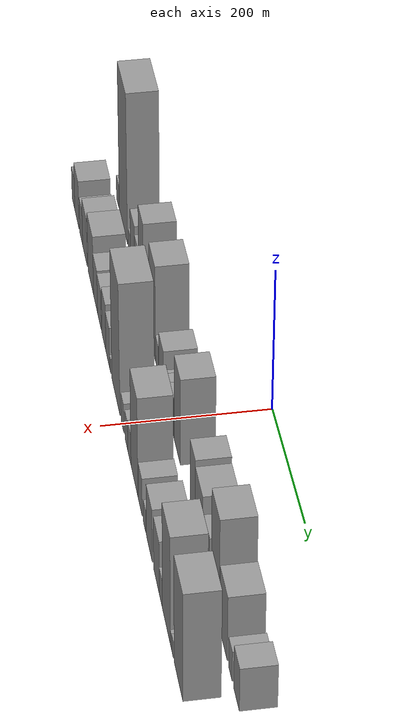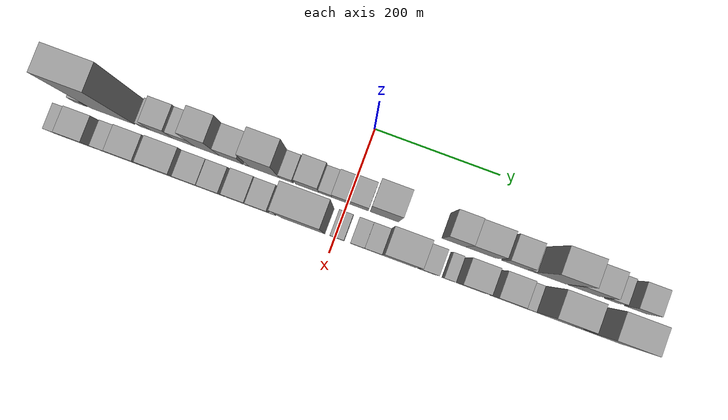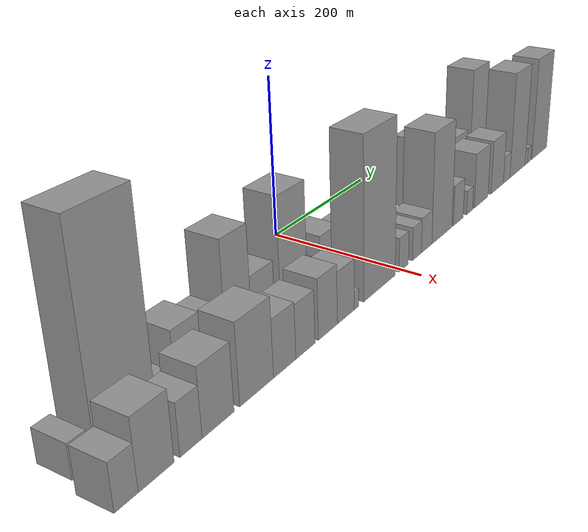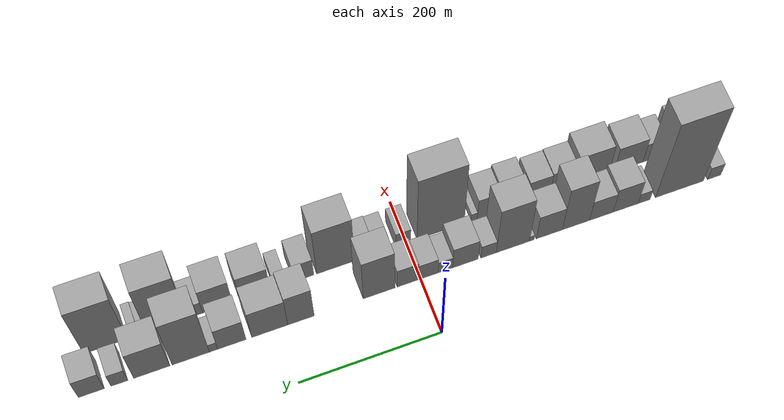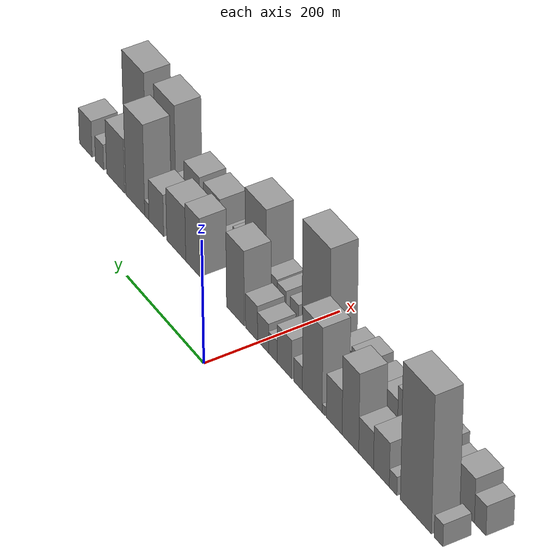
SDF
<sdf version="1.6">
 <world name="default">
  <scene>
   <sky><clouds><speed>12</speed></clouds></sky>
   <ambient>0.4 0.4 0.4 1</ambient>
   <background>0.7 0.7 0.7 1</background>
   <shadows>1</shadows>
  </scene>
  <gravity>0 0 -9.8066</gravity>
  <magnetic_field>6e-06 2.3e-05 -4.2e-05</magnetic_field>
  <physics default="0" name="default_physics" type="ode">
   <ode>
    <solver>
     <type>quick</type>
     <iters>10</iters>
     <sor>1.0</sor>
     <use_dynamic_moi_rescaling>0</use_dynamic_moi_rescaling>
    </solver>
    <constraints>
     <cfm>0</cfm>
     <erp>0.2</erp>
     <contact_max_correcting_vel>100</contact_max_correcting_vel>
     <contact_surface_layer>0.001</contact_surface_layer>
    </constraints>
   </ode>
   <max_step_size>0.004</max_step_size>
   <real_time_factor>1</real_time_factor>
   <real_time_update_rate>250</real_time_update_rate>
  </physics>
  <light name="sun" type="directional">
   <pose>0 0 10 0 0 0</pose>
   <diffuse>0.8 0.8 0.8 1</diffuse>
   <specular>0.2 0.2 0.2 1</specular>
   <attenuation>
    <range>1000</range>
    <constant>0.9</constant>
    <linear>0.01</linear>
    <quadratic>0.001</quadratic>
   </attenuation>
   <direction>-0.5 0.1 -0.9</direction>
  </light>
  <model name="building_1">
   <static>1</static>
   <pose>100.0000 -429.9319 0 0.000000 0.000000 0.000000</pose>
   <link name="link">
    <pose>0 0 18.00 0 0 0</pose>
    <collision name="collision"><geometry><box><size>40.0000 20.1361 36.0000</size></box></geometry></collision>
    <visual name="visual">
     <cast_shadows>0</cast_shadows>
     <geometry><box><size>40.0000 20.1361 36.0000</size></box></geometry>
     <material>
      <script>
       <uri>model://grey_wall/materials/scripts</uri>
       <uri>model://grey_wall/materials/textures</uri>
       <name>vrc/grey_wall</name>
      </script>
     </material>
    </visual>
   </link>
  </model>
  <model name="building_2">
   <static>1</static>
   <pose>100.0000 -378.0433 0 0.000000 0.000000 0.000000</pose>
   <link name="link">
    <pose>0 0 111.00 0 0 0</pose>
    <collision name="collision"><geometry><box><size>40.0000 71.6411 222.0000</size></box></geometry></collision>
    <visual name="visual">
     <cast_shadows>0</cast_shadows>
     <geometry><box><size>40.0000 71.6411 222.0000</size></box></geometry>
     <material>
      <script>
       <uri>model://grey_wall/materials/scripts</uri>
       <uri>model://grey_wall/materials/textures</uri>
       <name>vrc/grey_wall</name>
      </script>
     </material>
    </visual>
   </link>
  </model>
  <model name="building_3">
   <static>1</static>
   <pose>100.0000 -325.3569 0 0.000000 0.000000 0.000000</pose>
   <link name="link">
    <pose>0 0 15.00 0 0 0</pose>
    <collision name="collision"><geometry><box><size>40.0000 17.7317 30.0000</size></box></geometry></collision>
    <visual name="visual">
     <cast_shadows>0</cast_shadows>
     <geometry><box><size>40.0000 17.7317 30.0000</size></box></geometry>
     <material>
      <script>
       <uri>model://grey_wall/materials/scripts</uri>
       <uri>model://grey_wall/materials/textures</uri>
       <name>vrc/grey_wall</name>
      </script>
     </material>
    </visual>
   </link>
  </model>
  <model name="building_4">
   <static>1</static>
   <pose>100.0000 -297.9642 0 0.000000 0.000000 0.000000</pose>
   <link name="link">
    <pose>0 0 36.00 0 0 0</pose>
    <collision name="collision"><geometry><box><size>40.0000 37.0537 72.0000</size></box></geometry></collision>
    <visual name="visual">
     <cast_shadows>0</cast_shadows>
     <geometry><box><size>40.0000 37.0537 72.0000</size></box></geometry>
     <material>
      <script>
       <uri>model://grey_wall/materials/scripts</uri>
       <uri>model://grey_wall/materials/textures</uri>
       <name>vrc/grey_wall</name>
      </script>
     </material>
    </visual>
   </link>
  </model>
  <model name="building_5">
   <static>1</static>
   <pose>100.0000 -262.0159 0 0.000000 0.000000 0.000000</pose>
   <link name="link">
    <pose>0 0 30.00 0 0 0</pose>
    <collision name="collision"><geometry><box><size>40.0000 34.8430 60.0000</size></box></geometry></collision>
    <visual name="visual">
     <cast_shadows>0</cast_shadows>
     <geometry><box><size>40.0000 34.8430 60.0000</size></box></geometry>
     <material>
      <script>
       <uri>model://grey_wall/materials/scripts</uri>
       <uri>model://grey_wall/materials/textures</uri>
       <name>vrc/grey_wall</name>
      </script>
     </material>
    </visual>
   </link>
  </model>
  <model name="building_6">
   <static>1</static>
   <pose>100.0000 -224.6517 0 0.000000 0.000000 0.000000</pose>
   <link name="link">
    <pose>0 0 64.50 0 0 0</pose>
    <collision name="collision"><geometry><box><size>40.0000 39.8854 129.0000</size></box></geometry></collision>
    <visual name="visual">
     <cast_shadows>0</cast_shadows>
     <geometry><box><size>40.0000 39.8854 129.0000</size></box></geometry>
     <material>
      <script>
       <uri>model://grey_wall/materials/scripts</uri>
       <uri>model://grey_wall/materials/textures</uri>
       <name>vrc/grey_wall</name>
      </script>
     </material>
    </visual>
   </link>
  </model>
  <model name="building_7">
   <static>1</static>
   <pose>100.0000 -185.7584 0 0.000000 0.000000 0.000000</pose>
   <link name="link">
    <pose>0 0 36.00 0 0 0</pose>
    <collision name="collision"><geometry><box><size>40.0000 37.9011 72.0000</size></box></geometry></collision>
    <visual name="visual">
     <cast_shadows>0</cast_shadows>
     <geometry><box><size>40.0000 37.9011 72.0000</size></box></geometry>
     <material>
      <script>
       <uri>model://grey_wall/materials/scripts</uri>
       <uri>model://grey_wall/materials/textures</uri>
       <name>vrc/grey_wall</name>
      </script>
     </material>
    </visual>
   </link>
  </model>
  <model name="building_8">
   <static>1</static>
   <pose>100.0000 -160.2678 0 0.000000 0.000000 0.000000</pose>
   <link name="link">
    <pose>0 0 7.50 0 0 0</pose>
    <collision name="collision"><geometry><box><size>40.0000 7.0802 15.0000</size></box></geometry></collision>
    <visual name="visual">
     <cast_shadows>0</cast_shadows>
     <geometry><box><size>40.0000 7.0802 15.0000</size></box></geometry>
     <material>
      <script>
       <uri>model://grey_wall/materials/scripts</uri>
       <uri>model://grey_wall/materials/textures</uri>
       <name>vrc/grey_wall</name>
      </script>
     </material>
    </visual>
   </link>
  </model>
  <model name="building_9">
   <static>1</static>
   <pose>100.0000 -132.5861 0 0.000000 0.000000 0.000000</pose>
   <link name="link">
    <pose>0 0 69.00 0 0 0</pose>
    <collision name="collision"><geometry><box><size>40.0000 48.2832 138.0000</size></box></geometry></collision>
    <visual name="visual">
     <cast_shadows>0</cast_shadows>
     <geometry><box><size>40.0000 48.2832 138.0000</size></box></geometry>
     <material>
      <script>
       <uri>model://grey_wall/materials/scripts</uri>
       <uri>model://grey_wall/materials/textures</uri>
       <name>vrc/grey_wall</name>
      </script>
     </material>
    </visual>
   </link>
  </model>
  <model name="building_10">
   <static>1</static>
   <pose>100.0000 -97.4779 0 0.000000 0.000000 0.000000</pose>
   <link name="link">
    <pose>0 0 19.50 0 0 0</pose>
    <collision name="collision"><geometry><box><size>40.0000 21.9331 39.0000</size></box></geometry></collision>
    <visual name="visual">
     <cast_shadows>0</cast_shadows>
     <geometry><box><size>40.0000 21.9331 39.0000</size></box></geometry>
     <material>
      <script>
       <uri>model://grey_wall/materials/scripts</uri>
       <uri>model://grey_wall/materials/textures</uri>
       <name>vrc/grey_wall</name>
      </script>
     </material>
    </visual>
   </link>
  </model>
  <model name="building_11">
   <static>1</static>
   <pose>100.0000 -64.1464 0 0.000000 0.000000 0.000000</pose>
   <link name="link">
    <pose>0 0 31.50 0 0 0</pose>
    <collision name="collision"><geometry><box><size>40.0000 36.7299 63.0000</size></box></geometry></collision>
    <visual name="visual">
     <cast_shadows>0</cast_shadows>
     <geometry><box><size>40.0000 36.7299 63.0000</size></box></geometry>
     <material>
      <script>
       <uri>model://grey_wall/materials/scripts</uri>
       <uri>model://grey_wall/materials/textures</uri>
       <name>vrc/grey_wall</name>
      </script>
     </material>
    </visual>
   </link>
  </model>
  <model name="building_12">
   <static>1</static>
   <pose>100.0000 -35.3533 0 0.000000 0.000000 0.000000</pose>
   <link name="link">
    <pose>0 0 18.00 0 0 0</pose>
    <collision name="collision"><geometry><box><size>40.0000 20.8563 36.0000</size></box></geometry></collision>
    <visual name="visual">
     <cast_shadows>0</cast_shadows>
     <geometry><box><size>40.0000 20.8563 36.0000</size></box></geometry>
     <material>
      <script>
       <uri>model://grey_wall/materials/scripts</uri>
       <uri>model://grey_wall/materials/textures</uri>
       <name>vrc/grey_wall</name>
      </script>
     </material>
    </visual>
   </link>
  </model>
  <model name="building_13">
   <static>1</static>
   <pose>100.0000 -11.0019 0 0.000000 0.000000 0.000000</pose>
   <link name="link">
    <pose>0 0 24.00 0 0 0</pose>
    <collision name="collision"><geometry><box><size>40.0000 27.8465 48.0000</size></box></geometry></collision>
    <visual name="visual">
     <cast_shadows>0</cast_shadows>
     <geometry><box><size>40.0000 27.8465 48.0000</size></box></geometry>
     <material>
      <script>
       <uri>model://grey_wall/materials/scripts</uri>
       <uri>model://grey_wall/materials/textures</uri>
       <name>vrc/grey_wall</name>
      </script>
     </material>
    </visual>
   </link>
  </model>
  <model name="building_14">
   <static>1</static>
   <pose>100.0000 18.1159 0 0.000000 0.000000 0.000000</pose>
   <link name="link">
    <pose>0 0 28.50 0 0 0</pose>
    <collision name="collision"><geometry><box><size>40.0000 30.3891 57.0000</size></box></geometry></collision>
    <visual name="visual">
     <cast_shadows>0</cast_shadows>
     <geometry><box><size>40.0000 30.3891 57.0000</size></box></geometry>
     <material>
      <script>
       <uri>model://grey_wall/materials/scripts</uri>
       <uri>model://grey_wall/materials/textures</uri>
       <name>vrc/grey_wall</name>
      </script>
     </material>
    </visual>
   </link>
  </model>
  <model name="building_15">
   <static>1</static>
   <pose>100.0000 58.9269 0 0.000000 0.000000 0.000000</pose>
   <link name="link">
    <pose>0 0 61.50 0 0 0</pose>
    <collision name="collision"><geometry><box><size>40.0000 45.2328 123.0000</size></box></geometry></collision>
    <visual name="visual">
     <cast_shadows>0</cast_shadows>
     <geometry><box><size>40.0000 45.2328 123.0000</size></box></geometry>
     <material>
      <script>
       <uri>model://grey_wall/materials/scripts</uri>
       <uri>model://grey_wall/materials/textures</uri>
       <name>vrc/grey_wall</name>
      </script>
     </material>
    </visual>
   </link>
  </model>
  <model name="building_16">
   <static>1</static>
   <pose>100.0000 168.8333 0 0.000000 0.000000 0.000000</pose>
   <link name="link">
    <pose>0 0 48.00 0 0 0</pose>
    <collision name="collision"><geometry><box><size>40.0000 36.8600 96.0000</size></box></geometry></collision>
    <visual name="visual">
     <cast_shadows>0</cast_shadows>
     <geometry><box><size>40.0000 36.8600 96.0000</size></box></geometry>
     <material>
      <script>
       <uri>model://grey_wall/materials/scripts</uri>
       <uri>model://grey_wall/materials/textures</uri>
       <name>vrc/grey_wall</name>
      </script>
     </material>
    </visual>
   </link>
  </model>
  <model name="building_17">
   <static>1</static>
   <pose>100.0000 212.3292 0 0.000000 0.000000 0.000000</pose>
   <link name="link">
    <pose>0 0 43.50 0 0 0</pose>
    <collision name="collision"><geometry><box><size>40.0000 50.1318 87.0000</size></box></geometry></collision>
    <visual name="visual">
     <cast_shadows>0</cast_shadows>
     <geometry><box><size>40.0000 50.1318 87.0000</size></box></geometry>
     <material>
      <script>
       <uri>model://grey_wall/materials/scripts</uri>
       <uri>model://grey_wall/materials/textures</uri>
       <name>vrc/grey_wall</name>
      </script>
     </material>
    </visual>
   </link>
  </model>
  <model name="building_18">
   <static>1</static>
   <pose>100.0000 265.0279 0 0.000000 0.000000 0.000000</pose>
   <link name="link">
    <pose>0 0 34.50 0 0 0</pose>
    <collision name="collision"><geometry><box><size>40.0000 39.2657 69.0000</size></box></geometry></collision>
    <visual name="visual">
     <cast_shadows>0</cast_shadows>
     <geometry><box><size>40.0000 39.2657 69.0000</size></box></geometry>
     <material>
      <script>
       <uri>model://grey_wall/materials/scripts</uri>
       <uri>model://grey_wall/materials/textures</uri>
       <name>vrc/grey_wall</name>
      </script>
     </material>
    </visual>
   </link>
  </model>
  <model name="building_19">
   <static>1</static>
   <pose>100.0000 290.2849 0 0.000000 0.000000 0.000000</pose>
   <link name="link">
    <pose>0 0 13.50 0 0 0</pose>
    <collision name="collision"><geometry><box><size>40.0000 11.2484 27.0000</size></box></geometry></collision>
    <visual name="visual">
     <cast_shadows>0</cast_shadows>
     <geometry><box><size>40.0000 11.2484 27.0000</size></box></geometry>
     <material>
      <script>
       <uri>model://grey_wall/materials/scripts</uri>
       <uri>model://grey_wall/materials/textures</uri>
       <name>vrc/grey_wall</name>
      </script>
     </material>
    </visual>
   </link>
  </model>
  <model name="building_20">
   <static>1</static>
   <pose>100.0000 321.4841 0 0.000000 0.000000 0.000000</pose>
   <link name="link">
    <pose>0 0 75.00 0 0 0</pose>
    <collision name="collision"><geometry><box><size>40.0000 51.1499 150.0000</size></box></geometry></collision>
    <visual name="visual">
     <cast_shadows>0</cast_shadows>
     <geometry><box><size>40.0000 51.1499 150.0000</size></box></geometry>
     <material>
      <script>
       <uri>model://grey_wall/materials/scripts</uri>
       <uri>model://grey_wall/materials/textures</uri>
       <name>vrc/grey_wall</name>
      </script>
     </material>
    </visual>
   </link>
  </model>
  <model name="building_21">
   <static>1</static>
   <pose>100.0000 374.7330 0 0.000000 0.000000 0.000000</pose>
   <link name="link">
    <pose>0 0 45.00 0 0 0</pose>
    <collision name="collision"><geometry><box><size>40.0000 49.3478 90.0000</size></box></geometry></collision>
    <visual name="visual">
     <cast_shadows>0</cast_shadows>
     <geometry><box><size>40.0000 49.3478 90.0000</size></box></geometry>
     <material>
      <script>
       <uri>model://grey_wall/materials/scripts</uri>
       <uri>model://grey_wall/materials/textures</uri>
       <name>vrc/grey_wall</name>
      </script>
     </material>
    </visual>
   </link>
  </model>
  <model name="building_22">
   <static>1</static>
   <pose>100.0000 418.8094 0 0.000000 0.000000 0.000000</pose>
   <link name="link">
    <pose>0 0 21.00 0 0 0</pose>
    <collision name="collision"><geometry><box><size>40.0000 22.8051 42.0000</size></box></geometry></collision>
    <visual name="visual">
     <cast_shadows>0</cast_shadows>
     <geometry><box><size>40.0000 22.8051 42.0000</size></box></geometry>
     <material>
      <script>
       <uri>model://grey_wall/materials/scripts</uri>
       <uri>model://grey_wall/materials/textures</uri>
       <name>vrc/grey_wall</name>
      </script>
     </material>
    </visual>
   </link>
  </model>
  <model name="building_23">
   <static>1</static>
   <pose>100.0000 456.7064 0 0.000000 0.000000 0.000000</pose>
   <link name="link">
    <pose>0 0 30.00 0 0 0</pose>
    <collision name="collision"><geometry><box><size>40.0000 34.9889 60.0000</size></box></geometry></collision>
    <visual name="visual">
     <cast_shadows>0</cast_shadows>
     <geometry><box><size>40.0000 34.9889 60.0000</size></box></geometry>
     <material>
      <script>
       <uri>model://grey_wall/materials/scripts</uri>
       <uri>model://grey_wall/materials/textures</uri>
       <name>vrc/grey_wall</name>
      </script>
     </material>
    </visual>
   </link>
  </model>
  <model name="building_24">
   <static>1</static>
   <pose>155.0000 -436.9475 0 0.000000 0.000000 0.000000</pose>
   <link name="link">
    <pose>0 0 24.00 0 0 0</pose>
    <collision name="collision"><geometry><box><size>40.0000 26.1049 48.0000</size></box></geometry></collision>
    <visual name="visual">
     <cast_shadows>0</cast_shadows>
     <geometry><box><size>40.0000 26.1049 48.0000</size></box></geometry>
     <material>
      <script>
       <uri>model://grey_wall/materials/scripts</uri>
       <uri>model://grey_wall/materials/textures</uri>
       <name>vrc/grey_wall</name>
      </script>
     </material>
    </visual>
   </link>
  </model>
  <model name="building_25">
   <static>1</static>
   <pose>155.0000 -403.1090 0 0.000000 0.000000 0.000000</pose>
   <link name="link">
    <pose>0 0 36.00 0 0 0</pose>
    <collision name="collision"><geometry><box><size>40.0000 41.5721 72.0000</size></box></geometry></collision>
    <visual name="visual">
     <cast_shadows>0</cast_shadows>
     <geometry><box><size>40.0000 41.5721 72.0000</size></box></geometry>
     <material>
      <script>
       <uri>model://grey_wall/materials/scripts</uri>
       <uri>model://grey_wall/materials/textures</uri>
       <name>vrc/grey_wall</name>
      </script>
     </material>
    </visual>
   </link>
  </model>
  <model name="building_26">
   <static>1</static>
   <pose>155.0000 -361.3694 0 0.000000 0.000000 0.000000</pose>
   <link name="link">
    <pose>0 0 27.00 0 0 0</pose>
    <collision name="collision"><geometry><box><size>40.0000 27.9071 54.0000</size></box></geometry></collision>
    <visual name="visual">
     <cast_shadows>0</cast_shadows>
     <geometry><box><size>40.0000 27.9071 54.0000</size></box></geometry>
     <material>
      <script>
       <uri>model://grey_wall/materials/scripts</uri>
       <uri>model://grey_wall/materials/textures</uri>
       <name>vrc/grey_wall</name>
      </script>
     </material>
    </visual>
   </link>
  </model>
  <model name="building_27">
   <static>1</static>
   <pose>155.0000 -325.8531 0 0.000000 0.000000 0.000000</pose>
   <link name="link">
    <pose>0 0 36.00 0 0 0</pose>
    <collision name="collision"><geometry><box><size>40.0000 43.1255 72.0000</size></box></geometry></collision>
    <visual name="visual">
     <cast_shadows>0</cast_shadows>
     <geometry><box><size>40.0000 43.1255 72.0000</size></box></geometry>
     <material>
      <script>
       <uri>model://grey_wall/materials/scripts</uri>
       <uri>model://grey_wall/materials/textures</uri>
       <name>vrc/grey_wall</name>
      </script>
     </material>
    </visual>
   </link>
  </model>
  <model name="building_28">
   <static>1</static>
   <pose>155.0000 -271.0598 0 0.000000 0.000000 0.000000</pose>
   <link name="link">
    <pose>0 0 43.50 0 0 0</pose>
    <collision name="collision"><geometry><box><size>40.0000 50.4610 87.0000</size></box></geometry></collision>
    <visual name="visual">
     <cast_shadows>0</cast_shadows>
     <geometry><box><size>40.0000 50.4610 87.0000</size></box></geometry>
     <material>
      <script>
       <uri>model://grey_wall/materials/scripts</uri>
       <uri>model://grey_wall/materials/textures</uri>
       <name>vrc/grey_wall</name>
      </script>
     </material>
    </visual>
   </link>
  </model>
  <model name="building_29">
   <static>1</static>
   <pose>155.0000 -227.7071 0 0.000000 0.000000 0.000000</pose>
   <link name="link">
    <pose>0 0 31.50 0 0 0</pose>
    <collision name="collision"><geometry><box><size>40.0000 36.2444 63.0000</size></box></geometry></collision>
    <visual name="visual">
     <cast_shadows>0</cast_shadows>
     <geometry><box><size>40.0000 36.2444 63.0000</size></box></geometry>
     <material>
      <script>
       <uri>model://grey_wall/materials/scripts</uri>
       <uri>model://grey_wall/materials/textures</uri>
       <name>vrc/grey_wall</name>
      </script>
     </material>
    </visual>
   </link>
  </model>
  <model name="building_30">
   <static>1</static>
   <pose>155.0000 -193.0817 0 0.000000 0.000000 0.000000</pose>
   <link name="link">
    <pose>0 0 30.00 0 0 0</pose>
    <collision name="collision"><geometry><box><size>40.0000 33.0066 60.0000</size></box></geometry></collision>
    <visual name="visual">
     <cast_shadows>0</cast_shadows>
     <geometry><box><size>40.0000 33.0066 60.0000</size></box></geometry>
     <material>
      <script>
       <uri>model://grey_wall/materials/scripts</uri>
       <uri>model://grey_wall/materials/textures</uri>
       <name>vrc/grey_wall</name>
      </script>
     </material>
    </visual>
   </link>
  </model>
  <model name="building_31">
   <static>1</static>
   <pose>155.0000 -153.0790 0 0.000000 0.000000 0.000000</pose>
   <link name="link">
    <pose>0 0 34.50 0 0 0</pose>
    <collision name="collision"><geometry><box><size>40.0000 34.9989 69.0000</size></box></geometry></collision>
    <visual name="visual">
     <cast_shadows>0</cast_shadows>
     <geometry><box><size>40.0000 34.9989 69.0000</size></box></geometry>
     <material>
      <script>
       <uri>model://grey_wall/materials/scripts</uri>
       <uri>model://grey_wall/materials/textures</uri>
       <name>vrc/grey_wall</name>
      </script>
     </material>
    </visual>
   </link>
  </model>
  <model name="building_32">
   <static>1</static>
   <pose>155.0000 -119.0999 0 0.000000 0.000000 0.000000</pose>
   <link name="link">
    <pose>0 0 30.00 0 0 0</pose>
    <collision name="collision"><geometry><box><size>40.0000 32.9592 60.0000</size></box></geometry></collision>
    <visual name="visual">
     <cast_shadows>0</cast_shadows>
     <geometry><box><size>40.0000 32.9592 60.0000</size></box></geometry>
     <material>
      <script>
       <uri>model://grey_wall/materials/scripts</uri>
       <uri>model://grey_wall/materials/textures</uri>
       <name>vrc/grey_wall</name>
      </script>
     </material>
    </visual>
   </link>
  </model>
  <model name="building_33">
   <static>1</static>
   <pose>155.0000 -98.1310 0 0.000000 0.000000 0.000000</pose>
   <link name="link">
    <pose>0 0 10.50 0 0 0</pose>
    <collision name="collision"><geometry><box><size>40.0000 8.9787 21.0000</size></box></geometry></collision>
    <visual name="visual">
     <cast_shadows>0</cast_shadows>
     <geometry><box><size>40.0000 8.9787 21.0000</size></box></geometry>
     <material>
      <script>
       <uri>model://grey_wall/materials/scripts</uri>
       <uri>model://grey_wall/materials/textures</uri>
       <name>vrc/grey_wall</name>
      </script>
     </material>
    </visual>
   </link>
  </model>
  <model name="building_34">
   <static>1</static>
   <pose>155.0000 -49.5537 0 0.000000 0.000000 0.000000</pose>
   <link name="link">
    <pose>0 0 94.50 0 0 0</pose>
    <collision name="collision"><geometry><box><size>40.0000 68.1760 189.0000</size></box></geometry></collision>
    <visual name="visual">
     <cast_shadows>0</cast_shadows>
     <geometry><box><size>40.0000 68.1760 189.0000</size></box></geometry>
     <material>
      <script>
       <uri>model://grey_wall/materials/scripts</uri>
       <uri>model://grey_wall/materials/textures</uri>
       <name>vrc/grey_wall</name>
      </script>
     </material>
    </visual>
   </link>
  </model>
  <model name="building_35">
   <static>1</static>
   <pose>155.0000 4.4022 0 0.000000 0.000000 0.000000</pose>
   <link name="link">
    <pose>0 0 21.00 0 0 0</pose>
    <collision name="collision"><geometry><box><size>40.0000 21.7359 42.0000</size></box></geometry></collision>
    <visual name="visual">
     <cast_shadows>0</cast_shadows>
     <geometry><box><size>40.0000 21.7359 42.0000</size></box></geometry>
     <material>
      <script>
       <uri>model://grey_wall/materials/scripts</uri>
       <uri>model://grey_wall/materials/textures</uri>
       <name>vrc/grey_wall</name>
      </script>
     </material>
    </visual>
   </link>
  </model>
  <model name="building_36">
   <static>1</static>
   <pose>155.0000 36.3220 0 0.000000 0.000000 0.000000</pose>
   <link name="link">
    <pose>0 0 21.00 0 0 0</pose>
    <collision name="collision"><geometry><box><size>40.0000 22.1036 42.0000</size></box></geometry></collision>
    <visual name="visual">
     <cast_shadows>0</cast_shadows>
     <geometry><box><size>40.0000 22.1036 42.0000</size></box></geometry>
     <material>
      <script>
       <uri>model://grey_wall/materials/scripts</uri>
       <uri>model://grey_wall/materials/textures</uri>
       <name>vrc/grey_wall</name>
      </script>
     </material>
    </visual>
   </link>
  </model>
  <model name="building_37">
   <static>1</static>
   <pose>155.0000 60.7140 0 0.000000 0.000000 0.000000</pose>
   <link name="link">
    <pose>0 0 22.50 0 0 0</pose>
    <collision name="collision"><geometry><box><size>40.0000 26.6803 45.0000</size></box></geometry></collision>
    <visual name="visual">
     <cast_shadows>0</cast_shadows>
     <geometry><box><size>40.0000 26.6803 45.0000</size></box></geometry>
     <material>
      <script>
       <uri>model://grey_wall/materials/scripts</uri>
       <uri>model://grey_wall/materials/textures</uri>
       <name>vrc/grey_wall</name>
      </script>
     </material>
    </visual>
   </link>
  </model>
  <model name="building_38">
   <static>1</static>
   <pose>155.0000 100.9931 0 0.000000 0.000000 0.000000</pose>
   <link name="link">
    <pose>0 0 70.50 0 0 0</pose>
    <collision name="collision"><geometry><box><size>40.0000 53.8780 141.0000</size></box></geometry></collision>
    <visual name="visual">
     <cast_shadows>0</cast_shadows>
     <geometry><box><size>40.0000 53.8780 141.0000</size></box></geometry>
     <material>
      <script>
       <uri>model://grey_wall/materials/scripts</uri>
       <uri>model://grey_wall/materials/textures</uri>
       <name>vrc/grey_wall</name>
      </script>
     </material>
    </visual>
   </link>
  </model>
  <model name="building_39">
   <static>1</static>
   <pose>155.0000 146.2072 0 0.000000 0.000000 0.000000</pose>
   <link name="link">
    <pose>0 0 27.00 0 0 0</pose>
    <collision name="collision"><geometry><box><size>40.0000 28.5501 54.0000</size></box></geometry></collision>
    <visual name="visual">
     <cast_shadows>0</cast_shadows>
     <geometry><box><size>40.0000 28.5501 54.0000</size></box></geometry>
     <material>
      <script>
       <uri>model://grey_wall/materials/scripts</uri>
       <uri>model://grey_wall/materials/textures</uri>
       <name>vrc/grey_wall</name>
      </script>
     </material>
    </visual>
   </link>
  </model>
  <model name="building_40">
   <static>1</static>
   <pose>155.0000 179.3710 0 0.000000 0.000000 0.000000</pose>
   <link name="link">
    <pose>0 0 16.50 0 0 0</pose>
    <collision name="collision"><geometry><box><size>40.0000 17.7776 33.0000</size></box></geometry></collision>
    <visual name="visual">
     <cast_shadows>0</cast_shadows>
     <geometry><box><size>40.0000 17.7776 33.0000</size></box></geometry>
     <material>
      <script>
       <uri>model://grey_wall/materials/scripts</uri>
       <uri>model://grey_wall/materials/textures</uri>
       <name>vrc/grey_wall</name>
      </script>
     </material>
    </visual>
   </link>
  </model>
  <model name="building_41">
   <static>1</static>
   <pose>155.0000 214.8004 0 0.000000 0.000000 0.000000</pose>
   <link name="link">
    <pose>0 0 37.50 0 0 0</pose>
    <collision name="collision"><geometry><box><size>40.0000 43.0811 75.0000</size></box></geometry></collision>
    <visual name="visual">
     <cast_shadows>0</cast_shadows>
     <geometry><box><size>40.0000 43.0811 75.0000</size></box></geometry>
     <material>
      <script>
       <uri>model://grey_wall/materials/scripts</uri>
       <uri>model://grey_wall/materials/textures</uri>
       <name>vrc/grey_wall</name>
      </script>
     </material>
    </visual>
   </link>
  </model>
  <model name="building_42">
   <static>1</static>
   <pose>155.0000 267.0857 0 0.000000 0.000000 0.000000</pose>
   <link name="link">
    <pose>0 0 37.50 0 0 0</pose>
    <collision name="collision"><geometry><box><size>40.0000 41.4896 75.0000</size></box></geometry></collision>
    <visual name="visual">
     <cast_shadows>0</cast_shadows>
     <geometry><box><size>40.0000 41.4896 75.0000</size></box></geometry>
     <material>
      <script>
       <uri>model://grey_wall/materials/scripts</uri>
       <uri>model://grey_wall/materials/textures</uri>
       <name>vrc/grey_wall</name>
      </script>
     </material>
    </visual>
   </link>
  </model>
  <model name="building_43">
   <static>1</static>
   <pose>155.0000 299.1804 0 0.000000 0.000000 0.000000</pose>
   <link name="link">
    <pose>0 0 19.50 0 0 0</pose>
    <collision name="collision"><geometry><box><size>40.0000 22.6998 39.0000</size></box></geometry></collision>
    <visual name="visual">
     <cast_shadows>0</cast_shadows>
     <geometry><box><size>40.0000 22.6998 39.0000</size></box></geometry>
     <material>
      <script>
       <uri>model://grey_wall/materials/scripts</uri>
       <uri>model://grey_wall/materials/textures</uri>
       <name>vrc/grey_wall</name>
      </script>
     </material>
    </visual>
   </link>
  </model>
  <model name="building_44">
   <static>1</static>
   <pose>155.0000 338.0250 0 0.000000 0.000000 0.000000</pose>
   <link name="link">
    <pose>0 0 75.00 0 0 0</pose>
    <collision name="collision"><geometry><box><size>40.0000 54.9894 150.0000</size></box></geometry></collision>
    <visual name="visual">
     <cast_shadows>0</cast_shadows>
     <geometry><box><size>40.0000 54.9894 150.0000</size></box></geometry>
     <material>
      <script>
       <uri>model://grey_wall/materials/scripts</uri>
       <uri>model://grey_wall/materials/textures</uri>
       <name>vrc/grey_wall</name>
      </script>
     </material>
    </visual>
   </link>
  </model>
  <model name="building_45">
   <static>1</static>
   <pose>155.0000 370.2176 0 0.000000 0.000000 0.000000</pose>
   <link name="link">
    <pose>0 0 10.50 0 0 0</pose>
    <collision name="collision"><geometry><box><size>40.0000 9.3958 21.0000</size></box></geometry></collision>
    <visual name="visual">
     <cast_shadows>0</cast_shadows>
     <geometry><box><size>40.0000 9.3958 21.0000</size></box></geometry>
     <material>
      <script>
       <uri>model://grey_wall/materials/scripts</uri>
       <uri>model://grey_wall/materials/textures</uri>
       <name>vrc/grey_wall</name>
      </script>
     </material>
    </visual>
   </link>
  </model>
  <model name="building_46">
   <static>1</static>
   <pose>155.0000 380.7954 0 0.000000 0.000000 0.000000</pose>
   <link name="link">
    <pose>0 0 12.00 0 0 0</pose>
    <collision name="collision"><geometry><box><size>40.0000 11.7597 24.0000</size></box></geometry></collision>
    <visual name="visual">
     <cast_shadows>0</cast_shadows>
     <geometry><box><size>40.0000 11.7597 24.0000</size></box></geometry>
     <material>
      <script>
       <uri>model://grey_wall/materials/scripts</uri>
       <uri>model://grey_wall/materials/textures</uri>
       <name>vrc/grey_wall</name>
      </script>
     </material>
    </visual>
   </link>
  </model>
  <model name="building_47">
   <static>1</static>
   <pose>155.0000 421.4963 0 0.000000 0.000000 0.000000</pose>
   <link name="link">
    <pose>0 0 75.00 0 0 0</pose>
    <collision name="collision"><geometry><box><size>40.0000 59.6421 150.0000</size></box></geometry></collision>
    <visual name="visual">
     <cast_shadows>0</cast_shadows>
     <geometry><box><size>40.0000 59.6421 150.0000</size></box></geometry>
     <material>
      <script>
       <uri>model://grey_wall/materials/scripts</uri>
       <uri>model://grey_wall/materials/textures</uri>
       <name>vrc/grey_wall</name>
      </script>
     </material>
    </visual>
   </link>
  </model>
 </world>
</sdf>
